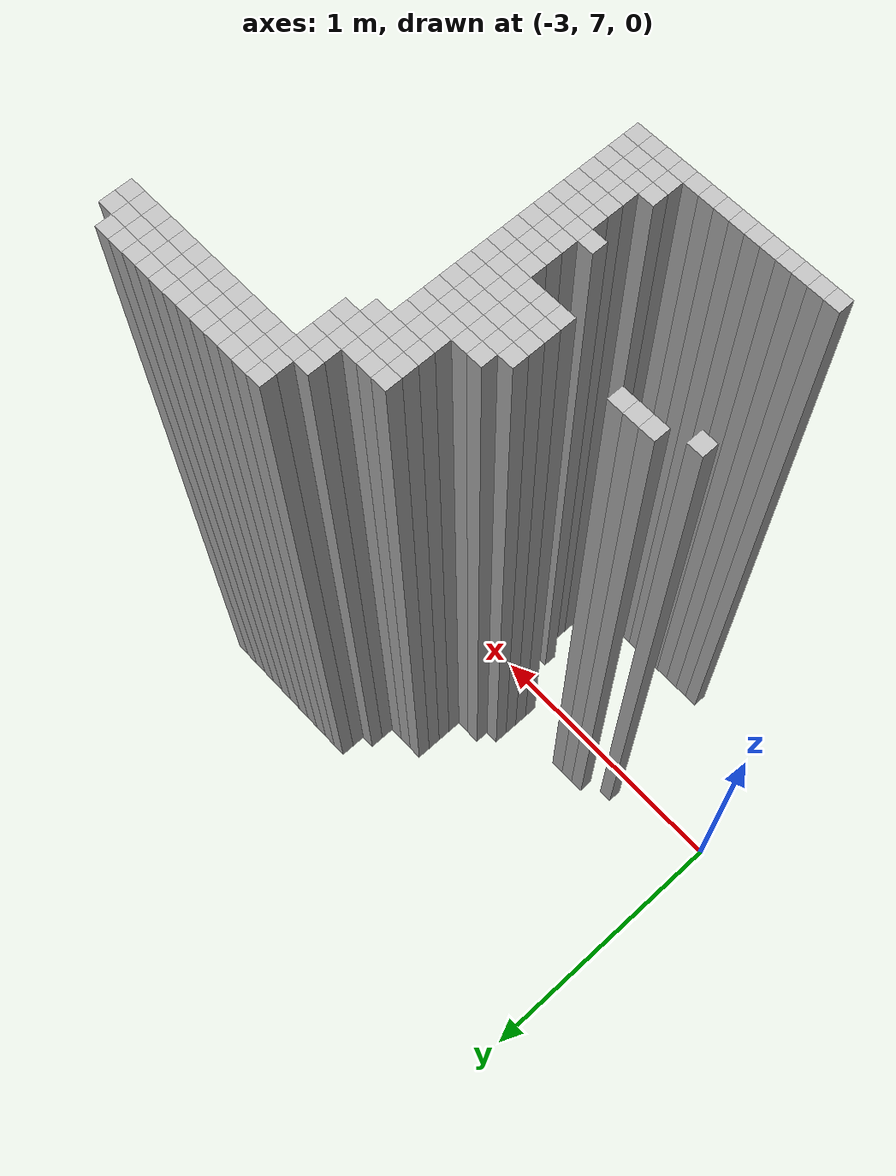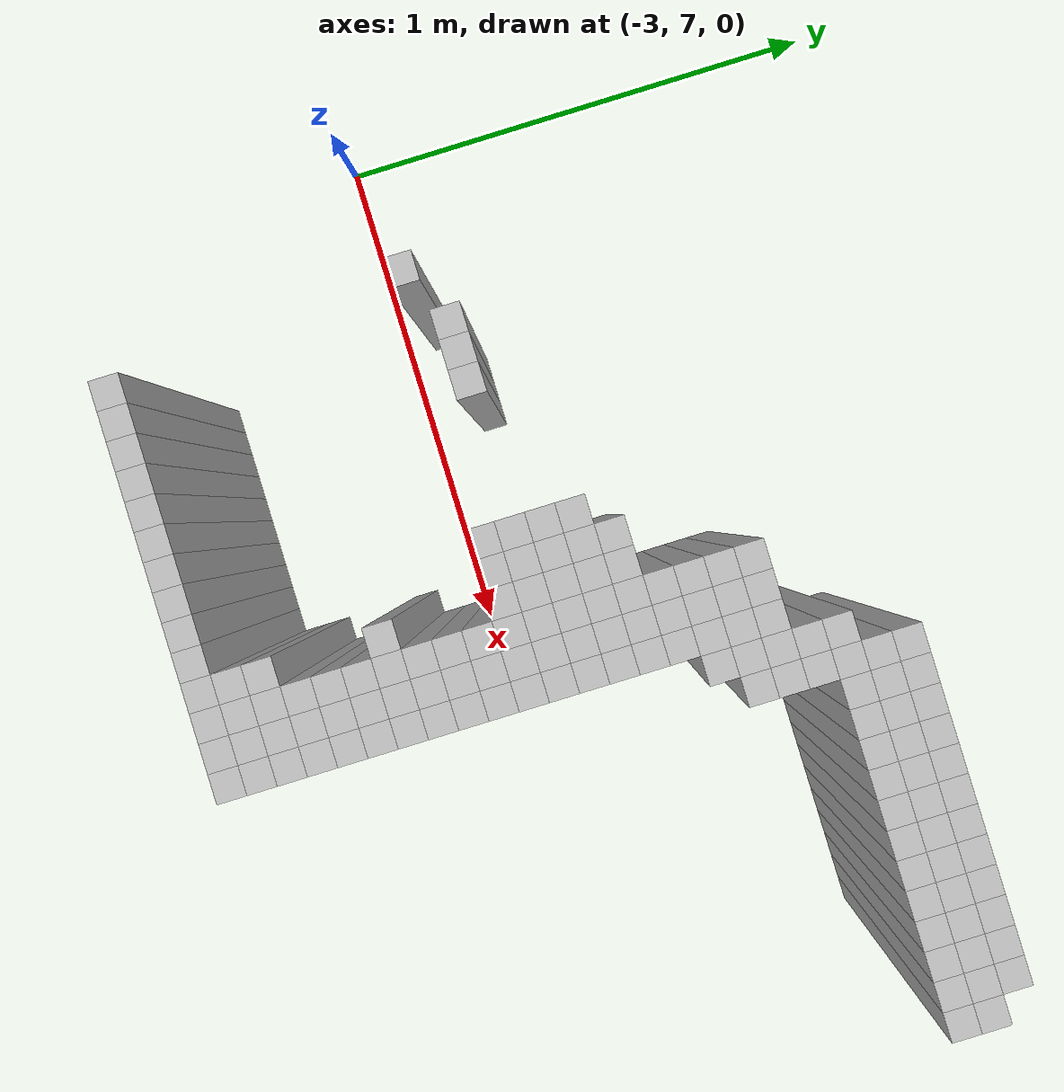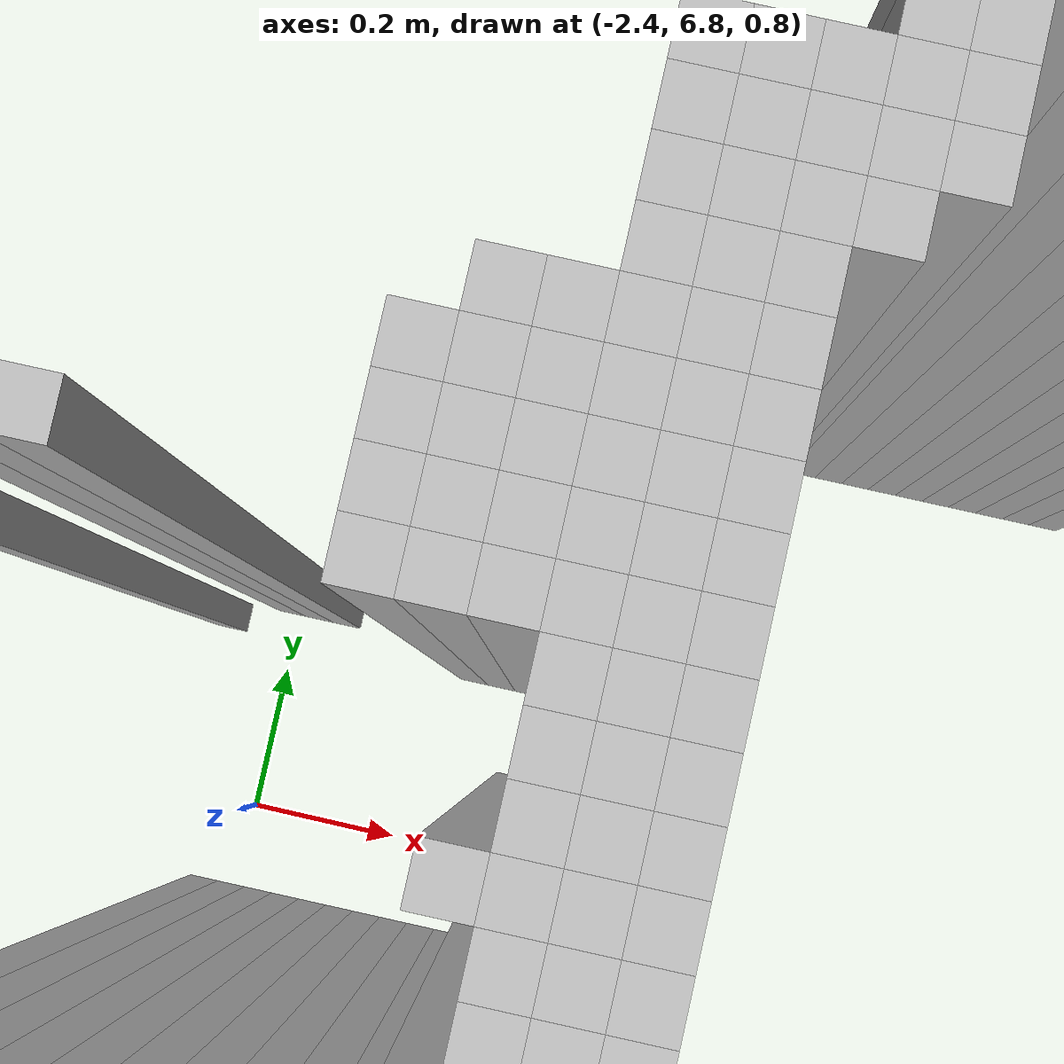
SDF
<sdf version="1.9">
 <world name="map_world">
  <model name="wall_187_0">
   <static>true</static>
   <pose>-1.811 7.680 1.250 0 0 0</pose>
   <link name="link">
    <collision name="collision"><geometry><box><size>0.050 0.050 2.500</size></box></geometry></collision>
    <visual name="visual"><geometry><box><size>0.050 0.050 2.500</size></box></geometry></visual>
   </link>
  </model>
  <model name="wall_188_0">
   <static>true</static>
   <pose>-1.761 7.680 1.250 0 0 0</pose>
   <link name="link">
    <collision name="collision"><geometry><box><size>0.050 0.050 2.500</size></box></geometry></collision>
    <visual name="visual"><geometry><box><size>0.050 0.050 2.500</size></box></geometry></visual>
   </link>
  </model>
  <model name="wall_189_0">
   <static>true</static>
   <pose>-1.711 7.680 1.250 0 0 0</pose>
   <link name="link">
    <collision name="collision"><geometry><box><size>0.050 0.050 2.500</size></box></geometry></collision>
    <visual name="visual"><geometry><box><size>0.050 0.050 2.500</size></box></geometry></visual>
   </link>
  </model>
  <model name="wall_190_0">
   <static>true</static>
   <pose>-1.661 7.680 1.250 0 0 0</pose>
   <link name="link">
    <collision name="collision"><geometry><box><size>0.050 0.050 2.500</size></box></geometry></collision>
    <visual name="visual"><geometry><box><size>0.050 0.050 2.500</size></box></geometry></visual>
   </link>
  </model>
  <model name="wall_191_0">
   <static>true</static>
   <pose>-1.611 7.680 1.250 0 0 0</pose>
   <link name="link">
    <collision name="collision"><geometry><box><size>0.050 0.050 2.500</size></box></geometry></collision>
    <visual name="visual"><geometry><box><size>0.050 0.050 2.500</size></box></geometry></visual>
   </link>
  </model>
  <model name="wall_192_0">
   <static>true</static>
   <pose>-1.561 7.680 1.250 0 0 0</pose>
   <link name="link">
    <collision name="collision"><geometry><box><size>0.050 0.050 2.500</size></box></geometry></collision>
    <visual name="visual"><geometry><box><size>0.050 0.050 2.500</size></box></geometry></visual>
   </link>
  </model>
  <model name="wall_193_0">
   <static>true</static>
   <pose>-1.511 7.680 1.250 0 0 0</pose>
   <link name="link">
    <collision name="collision"><geometry><box><size>0.050 0.050 2.500</size></box></geometry></collision>
    <visual name="visual"><geometry><box><size>0.050 0.050 2.500</size></box></geometry></visual>
   </link>
  </model>
  <model name="wall_194_0">
   <static>true</static>
   <pose>-1.461 7.680 1.250 0 0 0</pose>
   <link name="link">
    <collision name="collision"><geometry><box><size>0.050 0.050 2.500</size></box></geometry></collision>
    <visual name="visual"><geometry><box><size>0.050 0.050 2.500</size></box></geometry></visual>
   </link>
  </model>
  <model name="wall_195_0">
   <static>true</static>
   <pose>-1.411 7.680 1.250 0 0 0</pose>
   <link name="link">
    <collision name="collision"><geometry><box><size>0.050 0.050 2.500</size></box></geometry></collision>
    <visual name="visual"><geometry><box><size>0.050 0.050 2.500</size></box></geometry></visual>
   </link>
  </model>
  <model name="wall_196_0">
   <static>true</static>
   <pose>-1.361 7.680 1.250 0 0 0</pose>
   <link name="link">
    <collision name="collision"><geometry><box><size>0.050 0.050 2.500</size></box></geometry></collision>
    <visual name="visual"><geometry><box><size>0.050 0.050 2.500</size></box></geometry></visual>
   </link>
  </model>
  <model name="wall_197_0">
   <static>true</static>
   <pose>-1.311 7.680 1.250 0 0 0</pose>
   <link name="link">
    <collision name="collision"><geometry><box><size>0.050 0.050 2.500</size></box></geometry></collision>
    <visual name="visual"><geometry><box><size>0.050 0.050 2.500</size></box></geometry></visual>
   </link>
  </model>
  <model name="wall_198_0">
   <static>true</static>
   <pose>-1.261 7.680 1.250 0 0 0</pose>
   <link name="link">
    <collision name="collision"><geometry><box><size>0.050 0.050 2.500</size></box></geometry></collision>
    <visual name="visual"><geometry><box><size>0.050 0.050 2.500</size></box></geometry></visual>
   </link>
  </model>
  <model name="wall_187_1">
   <static>true</static>
   <pose>-1.811 7.630 1.250 0 0 0</pose>
   <link name="link">
    <collision name="collision"><geometry><box><size>0.050 0.050 2.500</size></box></geometry></collision>
    <visual name="visual"><geometry><box><size>0.050 0.050 2.500</size></box></geometry></visual>
   </link>
  </model>
  <model name="wall_188_1">
   <static>true</static>
   <pose>-1.761 7.630 1.250 0 0 0</pose>
   <link name="link">
    <collision name="collision"><geometry><box><size>0.050 0.050 2.500</size></box></geometry></collision>
    <visual name="visual"><geometry><box><size>0.050 0.050 2.500</size></box></geometry></visual>
   </link>
  </model>
  <model name="wall_189_1">
   <static>true</static>
   <pose>-1.711 7.630 1.250 0 0 0</pose>
   <link name="link">
    <collision name="collision"><geometry><box><size>0.050 0.050 2.500</size></box></geometry></collision>
    <visual name="visual"><geometry><box><size>0.050 0.050 2.500</size></box></geometry></visual>
   </link>
  </model>
  <model name="wall_190_1">
   <static>true</static>
   <pose>-1.661 7.630 1.250 0 0 0</pose>
   <link name="link">
    <collision name="collision"><geometry><box><size>0.050 0.050 2.500</size></box></geometry></collision>
    <visual name="visual"><geometry><box><size>0.050 0.050 2.500</size></box></geometry></visual>
   </link>
  </model>
  <model name="wall_191_1">
   <static>true</static>
   <pose>-1.611 7.630 1.250 0 0 0</pose>
   <link name="link">
    <collision name="collision"><geometry><box><size>0.050 0.050 2.500</size></box></geometry></collision>
    <visual name="visual"><geometry><box><size>0.050 0.050 2.500</size></box></geometry></visual>
   </link>
  </model>
  <model name="wall_192_1">
   <static>true</static>
   <pose>-1.561 7.630 1.250 0 0 0</pose>
   <link name="link">
    <collision name="collision"><geometry><box><size>0.050 0.050 2.500</size></box></geometry></collision>
    <visual name="visual"><geometry><box><size>0.050 0.050 2.500</size></box></geometry></visual>
   </link>
  </model>
  <model name="wall_193_1">
   <static>true</static>
   <pose>-1.511 7.630 1.250 0 0 0</pose>
   <link name="link">
    <collision name="collision"><geometry><box><size>0.050 0.050 2.500</size></box></geometry></collision>
    <visual name="visual"><geometry><box><size>0.050 0.050 2.500</size></box></geometry></visual>
   </link>
  </model>
  <model name="wall_194_1">
   <static>true</static>
   <pose>-1.461 7.630 1.250 0 0 0</pose>
   <link name="link">
    <collision name="collision"><geometry><box><size>0.050 0.050 2.500</size></box></geometry></collision>
    <visual name="visual"><geometry><box><size>0.050 0.050 2.500</size></box></geometry></visual>
   </link>
  </model>
  <model name="wall_195_1">
   <static>true</static>
   <pose>-1.411 7.630 1.250 0 0 0</pose>
   <link name="link">
    <collision name="collision"><geometry><box><size>0.050 0.050 2.500</size></box></geometry></collision>
    <visual name="visual"><geometry><box><size>0.050 0.050 2.500</size></box></geometry></visual>
   </link>
  </model>
  <model name="wall_196_1">
   <static>true</static>
   <pose>-1.361 7.630 1.250 0 0 0</pose>
   <link name="link">
    <collision name="collision"><geometry><box><size>0.050 0.050 2.500</size></box></geometry></collision>
    <visual name="visual"><geometry><box><size>0.050 0.050 2.500</size></box></geometry></visual>
   </link>
  </model>
  <model name="wall_197_1">
   <static>true</static>
   <pose>-1.311 7.630 1.250 0 0 0</pose>
   <link name="link">
    <collision name="collision"><geometry><box><size>0.050 0.050 2.500</size></box></geometry></collision>
    <visual name="visual"><geometry><box><size>0.050 0.050 2.500</size></box></geometry></visual>
   </link>
  </model>
  <model name="wall_198_1">
   <static>true</static>
   <pose>-1.261 7.630 1.250 0 0 0</pose>
   <link name="link">
    <collision name="collision"><geometry><box><size>0.050 0.050 2.500</size></box></geometry></collision>
    <visual name="visual"><geometry><box><size>0.050 0.050 2.500</size></box></geometry></visual>
   </link>
  </model>
  <model name="wall_199_1">
   <static>true</static>
   <pose>-1.211 7.630 1.250 0 0 0</pose>
   <link name="link">
    <collision name="collision"><geometry><box><size>0.050 0.050 2.500</size></box></geometry></collision>
    <visual name="visual"><geometry><box><size>0.050 0.050 2.500</size></box></geometry></visual>
   </link>
  </model>
  <model name="wall_186_2">
   <static>true</static>
   <pose>-1.861 7.580 1.250 0 0 0</pose>
   <link name="link">
    <collision name="collision"><geometry><box><size>0.050 0.050 2.500</size></box></geometry></collision>
    <visual name="visual"><geometry><box><size>0.050 0.050 2.500</size></box></geometry></visual>
   </link>
  </model>
  <model name="wall_187_2">
   <static>true</static>
   <pose>-1.811 7.580 1.250 0 0 0</pose>
   <link name="link">
    <collision name="collision"><geometry><box><size>0.050 0.050 2.500</size></box></geometry></collision>
    <visual name="visual"><geometry><box><size>0.050 0.050 2.500</size></box></geometry></visual>
   </link>
  </model>
  <model name="wall_188_2">
   <static>true</static>
   <pose>-1.761 7.580 1.250 0 0 0</pose>
   <link name="link">
    <collision name="collision"><geometry><box><size>0.050 0.050 2.500</size></box></geometry></collision>
    <visual name="visual"><geometry><box><size>0.050 0.050 2.500</size></box></geometry></visual>
   </link>
  </model>
  <model name="wall_189_2">
   <static>true</static>
   <pose>-1.711 7.580 1.250 0 0 0</pose>
   <link name="link">
    <collision name="collision"><geometry><box><size>0.050 0.050 2.500</size></box></geometry></collision>
    <visual name="visual"><geometry><box><size>0.050 0.050 2.500</size></box></geometry></visual>
   </link>
  </model>
  <model name="wall_190_2">
   <static>true</static>
   <pose>-1.661 7.580 1.250 0 0 0</pose>
   <link name="link">
    <collision name="collision"><geometry><box><size>0.050 0.050 2.500</size></box></geometry></collision>
    <visual name="visual"><geometry><box><size>0.050 0.050 2.500</size></box></geometry></visual>
   </link>
  </model>
  <model name="wall_191_2">
   <static>true</static>
   <pose>-1.611 7.580 1.250 0 0 0</pose>
   <link name="link">
    <collision name="collision"><geometry><box><size>0.050 0.050 2.500</size></box></geometry></collision>
    <visual name="visual"><geometry><box><size>0.050 0.050 2.500</size></box></geometry></visual>
   </link>
  </model>
  <model name="wall_192_2">
   <static>true</static>
   <pose>-1.561 7.580 1.250 0 0 0</pose>
   <link name="link">
    <collision name="collision"><geometry><box><size>0.050 0.050 2.500</size></box></geometry></collision>
    <visual name="visual"><geometry><box><size>0.050 0.050 2.500</size></box></geometry></visual>
   </link>
  </model>
  <model name="wall_193_2">
   <static>true</static>
   <pose>-1.511 7.580 1.250 0 0 0</pose>
   <link name="link">
    <collision name="collision"><geometry><box><size>0.050 0.050 2.500</size></box></geometry></collision>
    <visual name="visual"><geometry><box><size>0.050 0.050 2.500</size></box></geometry></visual>
   </link>
  </model>
  <model name="wall_194_2">
   <static>true</static>
   <pose>-1.461 7.580 1.250 0 0 0</pose>
   <link name="link">
    <collision name="collision"><geometry><box><size>0.050 0.050 2.500</size></box></geometry></collision>
    <visual name="visual"><geometry><box><size>0.050 0.050 2.500</size></box></geometry></visual>
   </link>
  </model>
  <model name="wall_195_2">
   <static>true</static>
   <pose>-1.411 7.580 1.250 0 0 0</pose>
   <link name="link">
    <collision name="collision"><geometry><box><size>0.050 0.050 2.500</size></box></geometry></collision>
    <visual name="visual"><geometry><box><size>0.050 0.050 2.500</size></box></geometry></visual>
   </link>
  </model>
  <model name="wall_196_2">
   <static>true</static>
   <pose>-1.361 7.580 1.250 0 0 0</pose>
   <link name="link">
    <collision name="collision"><geometry><box><size>0.050 0.050 2.500</size></box></geometry></collision>
    <visual name="visual"><geometry><box><size>0.050 0.050 2.500</size></box></geometry></visual>
   </link>
  </model>
  <model name="wall_197_2">
   <static>true</static>
   <pose>-1.311 7.580 1.250 0 0 0</pose>
   <link name="link">
    <collision name="collision"><geometry><box><size>0.050 0.050 2.500</size></box></geometry></collision>
    <visual name="visual"><geometry><box><size>0.050 0.050 2.500</size></box></geometry></visual>
   </link>
  </model>
  <model name="wall_198_2">
   <static>true</static>
   <pose>-1.261 7.580 1.250 0 0 0</pose>
   <link name="link">
    <collision name="collision"><geometry><box><size>0.050 0.050 2.500</size></box></geometry></collision>
    <visual name="visual"><geometry><box><size>0.050 0.050 2.500</size></box></geometry></visual>
   </link>
  </model>
  <model name="wall_199_2">
   <static>true</static>
   <pose>-1.211 7.580 1.250 0 0 0</pose>
   <link name="link">
    <collision name="collision"><geometry><box><size>0.050 0.050 2.500</size></box></geometry></collision>
    <visual name="visual"><geometry><box><size>0.050 0.050 2.500</size></box></geometry></visual>
   </link>
  </model>
  <model name="wall_186_3">
   <static>true</static>
   <pose>-1.861 7.530 1.250 0 0 0</pose>
   <link name="link">
    <collision name="collision"><geometry><box><size>0.050 0.050 2.500</size></box></geometry></collision>
    <visual name="visual"><geometry><box><size>0.050 0.050 2.500</size></box></geometry></visual>
   </link>
  </model>
  <model name="wall_187_3">
   <static>true</static>
   <pose>-1.811 7.530 1.250 0 0 0</pose>
   <link name="link">
    <collision name="collision"><geometry><box><size>0.050 0.050 2.500</size></box></geometry></collision>
    <visual name="visual"><geometry><box><size>0.050 0.050 2.500</size></box></geometry></visual>
   </link>
  </model>
  <model name="wall_183_4">
   <static>true</static>
   <pose>-2.011 7.480 1.250 0 0 0</pose>
   <link name="link">
    <collision name="collision"><geometry><box><size>0.050 0.050 2.500</size></box></geometry></collision>
    <visual name="visual"><geometry><box><size>0.050 0.050 2.500</size></box></geometry></visual>
   </link>
  </model>
  <model name="wall_184_4">
   <static>true</static>
   <pose>-1.961 7.480 1.250 0 0 0</pose>
   <link name="link">
    <collision name="collision"><geometry><box><size>0.050 0.050 2.500</size></box></geometry></collision>
    <visual name="visual"><geometry><box><size>0.050 0.050 2.500</size></box></geometry></visual>
   </link>
  </model>
  <model name="wall_185_4">
   <static>true</static>
   <pose>-1.911 7.480 1.250 0 0 0</pose>
   <link name="link">
    <collision name="collision"><geometry><box><size>0.050 0.050 2.500</size></box></geometry></collision>
    <visual name="visual"><geometry><box><size>0.050 0.050 2.500</size></box></geometry></visual>
   </link>
  </model>
  <model name="wall_186_4">
   <static>true</static>
   <pose>-1.861 7.480 1.250 0 0 0</pose>
   <link name="link">
    <collision name="collision"><geometry><box><size>0.050 0.050 2.500</size></box></geometry></collision>
    <visual name="visual"><geometry><box><size>0.050 0.050 2.500</size></box></geometry></visual>
   </link>
  </model>
  <model name="wall_187_4">
   <static>true</static>
   <pose>-1.811 7.480 1.250 0 0 0</pose>
   <link name="link">
    <collision name="collision"><geometry><box><size>0.050 0.050 2.500</size></box></geometry></collision>
    <visual name="visual"><geometry><box><size>0.050 0.050 2.500</size></box></geometry></visual>
   </link>
  </model>
  <model name="wall_183_5">
   <static>true</static>
   <pose>-2.011 7.430 1.250 0 0 0</pose>
   <link name="link">
    <collision name="collision"><geometry><box><size>0.050 0.050 2.500</size></box></geometry></collision>
    <visual name="visual"><geometry><box><size>0.050 0.050 2.500</size></box></geometry></visual>
   </link>
  </model>
  <model name="wall_184_5">
   <static>true</static>
   <pose>-1.961 7.430 1.250 0 0 0</pose>
   <link name="link">
    <collision name="collision"><geometry><box><size>0.050 0.050 2.500</size></box></geometry></collision>
    <visual name="visual"><geometry><box><size>0.050 0.050 2.500</size></box></geometry></visual>
   </link>
  </model>
  <model name="wall_185_5">
   <static>true</static>
   <pose>-1.911 7.430 1.250 0 0 0</pose>
   <link name="link">
    <collision name="collision"><geometry><box><size>0.050 0.050 2.500</size></box></geometry></collision>
    <visual name="visual"><geometry><box><size>0.050 0.050 2.500</size></box></geometry></visual>
   </link>
  </model>
  <model name="wall_186_5">
   <static>true</static>
   <pose>-1.861 7.430 1.250 0 0 0</pose>
   <link name="link">
    <collision name="collision"><geometry><box><size>0.050 0.050 2.500</size></box></geometry></collision>
    <visual name="visual"><geometry><box><size>0.050 0.050 2.500</size></box></geometry></visual>
   </link>
  </model>
  <model name="wall_187_5">
   <static>true</static>
   <pose>-1.811 7.430 1.250 0 0 0</pose>
   <link name="link">
    <collision name="collision"><geometry><box><size>0.050 0.050 2.500</size></box></geometry></collision>
    <visual name="visual"><geometry><box><size>0.050 0.050 2.500</size></box></geometry></visual>
   </link>
  </model>
  <model name="wall_183_6">
   <static>true</static>
   <pose>-2.011 7.380 1.250 0 0 0</pose>
   <link name="link">
    <collision name="collision"><geometry><box><size>0.050 0.050 2.500</size></box></geometry></collision>
    <visual name="visual"><geometry><box><size>0.050 0.050 2.500</size></box></geometry></visual>
   </link>
  </model>
  <model name="wall_184_6">
   <static>true</static>
   <pose>-1.961 7.380 1.250 0 0 0</pose>
   <link name="link">
    <collision name="collision"><geometry><box><size>0.050 0.050 2.500</size></box></geometry></collision>
    <visual name="visual"><geometry><box><size>0.050 0.050 2.500</size></box></geometry></visual>
   </link>
  </model>
  <model name="wall_185_6">
   <static>true</static>
   <pose>-1.911 7.380 1.250 0 0 0</pose>
   <link name="link">
    <collision name="collision"><geometry><box><size>0.050 0.050 2.500</size></box></geometry></collision>
    <visual name="visual"><geometry><box><size>0.050 0.050 2.500</size></box></geometry></visual>
   </link>
  </model>
  <model name="wall_186_6">
   <static>true</static>
   <pose>-1.861 7.380 1.250 0 0 0</pose>
   <link name="link">
    <collision name="collision"><geometry><box><size>0.050 0.050 2.500</size></box></geometry></collision>
    <visual name="visual"><geometry><box><size>0.050 0.050 2.500</size></box></geometry></visual>
   </link>
  </model>
  <model name="wall_183_7">
   <static>true</static>
   <pose>-2.011 7.330 1.250 0 0 0</pose>
   <link name="link">
    <collision name="collision"><geometry><box><size>0.050 0.050 2.500</size></box></geometry></collision>
    <visual name="visual"><geometry><box><size>0.050 0.050 2.500</size></box></geometry></visual>
   </link>
  </model>
  <model name="wall_184_7">
   <static>true</static>
   <pose>-1.961 7.330 1.250 0 0 0</pose>
   <link name="link">
    <collision name="collision"><geometry><box><size>0.050 0.050 2.500</size></box></geometry></collision>
    <visual name="visual"><geometry><box><size>0.050 0.050 2.500</size></box></geometry></visual>
   </link>
  </model>
  <model name="wall_185_7">
   <static>true</static>
   <pose>-1.911 7.330 1.250 0 0 0</pose>
   <link name="link">
    <collision name="collision"><geometry><box><size>0.050 0.050 2.500</size></box></geometry></collision>
    <visual name="visual"><geometry><box><size>0.050 0.050 2.500</size></box></geometry></visual>
   </link>
  </model>
  <model name="wall_181_8">
   <static>true</static>
   <pose>-2.111 7.280 1.250 0 0 0</pose>
   <link name="link">
    <collision name="collision"><geometry><box><size>0.050 0.050 2.500</size></box></geometry></collision>
    <visual name="visual"><geometry><box><size>0.050 0.050 2.500</size></box></geometry></visual>
   </link>
  </model>
  <model name="wall_182_8">
   <static>true</static>
   <pose>-2.061 7.280 1.250 0 0 0</pose>
   <link name="link">
    <collision name="collision"><geometry><box><size>0.050 0.050 2.500</size></box></geometry></collision>
    <visual name="visual"><geometry><box><size>0.050 0.050 2.500</size></box></geometry></visual>
   </link>
  </model>
  <model name="wall_183_8">
   <static>true</static>
   <pose>-2.011 7.280 1.250 0 0 0</pose>
   <link name="link">
    <collision name="collision"><geometry><box><size>0.050 0.050 2.500</size></box></geometry></collision>
    <visual name="visual"><geometry><box><size>0.050 0.050 2.500</size></box></geometry></visual>
   </link>
  </model>
  <model name="wall_184_8">
   <static>true</static>
   <pose>-1.961 7.280 1.250 0 0 0</pose>
   <link name="link">
    <collision name="collision"><geometry><box><size>0.050 0.050 2.500</size></box></geometry></collision>
    <visual name="visual"><geometry><box><size>0.050 0.050 2.500</size></box></geometry></visual>
   </link>
  </model>
  <model name="wall_185_8">
   <static>true</static>
   <pose>-1.911 7.280 1.250 0 0 0</pose>
   <link name="link">
    <collision name="collision"><geometry><box><size>0.050 0.050 2.500</size></box></geometry></collision>
    <visual name="visual"><geometry><box><size>0.050 0.050 2.500</size></box></geometry></visual>
   </link>
  </model>
  <model name="wall_180_9">
   <static>true</static>
   <pose>-2.161 7.230 1.250 0 0 0</pose>
   <link name="link">
    <collision name="collision"><geometry><box><size>0.050 0.050 2.500</size></box></geometry></collision>
    <visual name="visual"><geometry><box><size>0.050 0.050 2.500</size></box></geometry></visual>
   </link>
  </model>
  <model name="wall_181_9">
   <static>true</static>
   <pose>-2.111 7.230 1.250 0 0 0</pose>
   <link name="link">
    <collision name="collision"><geometry><box><size>0.050 0.050 2.500</size></box></geometry></collision>
    <visual name="visual"><geometry><box><size>0.050 0.050 2.500</size></box></geometry></visual>
   </link>
  </model>
  <model name="wall_182_9">
   <static>true</static>
   <pose>-2.061 7.230 1.250 0 0 0</pose>
   <link name="link">
    <collision name="collision"><geometry><box><size>0.050 0.050 2.500</size></box></geometry></collision>
    <visual name="visual"><geometry><box><size>0.050 0.050 2.500</size></box></geometry></visual>
   </link>
  </model>
  <model name="wall_183_9">
   <static>true</static>
   <pose>-2.011 7.230 1.250 0 0 0</pose>
   <link name="link">
    <collision name="collision"><geometry><box><size>0.050 0.050 2.500</size></box></geometry></collision>
    <visual name="visual"><geometry><box><size>0.050 0.050 2.500</size></box></geometry></visual>
   </link>
  </model>
  <model name="wall_184_9">
   <static>true</static>
   <pose>-1.961 7.230 1.250 0 0 0</pose>
   <link name="link">
    <collision name="collision"><geometry><box><size>0.050 0.050 2.500</size></box></geometry></collision>
    <visual name="visual"><geometry><box><size>0.050 0.050 2.500</size></box></geometry></visual>
   </link>
  </model>
  <model name="wall_185_9">
   <static>true</static>
   <pose>-1.911 7.230 1.250 0 0 0</pose>
   <link name="link">
    <collision name="collision"><geometry><box><size>0.050 0.050 2.500</size></box></geometry></collision>
    <visual name="visual"><geometry><box><size>0.050 0.050 2.500</size></box></geometry></visual>
   </link>
  </model>
  <model name="wall_180_10">
   <static>true</static>
   <pose>-2.161 7.180 1.250 0 0 0</pose>
   <link name="link">
    <collision name="collision"><geometry><box><size>0.050 0.050 2.500</size></box></geometry></collision>
    <visual name="visual"><geometry><box><size>0.050 0.050 2.500</size></box></geometry></visual>
   </link>
  </model>
  <model name="wall_181_10">
   <static>true</static>
   <pose>-2.111 7.180 1.250 0 0 0</pose>
   <link name="link">
    <collision name="collision"><geometry><box><size>0.050 0.050 2.500</size></box></geometry></collision>
    <visual name="visual"><geometry><box><size>0.050 0.050 2.500</size></box></geometry></visual>
   </link>
  </model>
  <model name="wall_182_10">
   <static>true</static>
   <pose>-2.061 7.180 1.250 0 0 0</pose>
   <link name="link">
    <collision name="collision"><geometry><box><size>0.050 0.050 2.500</size></box></geometry></collision>
    <visual name="visual"><geometry><box><size>0.050 0.050 2.500</size></box></geometry></visual>
   </link>
  </model>
  <model name="wall_183_10">
   <static>true</static>
   <pose>-2.011 7.180 1.250 0 0 0</pose>
   <link name="link">
    <collision name="collision"><geometry><box><size>0.050 0.050 2.500</size></box></geometry></collision>
    <visual name="visual"><geometry><box><size>0.050 0.050 2.500</size></box></geometry></visual>
   </link>
  </model>
  <model name="wall_184_10">
   <static>true</static>
   <pose>-1.961 7.180 1.250 0 0 0</pose>
   <link name="link">
    <collision name="collision"><geometry><box><size>0.050 0.050 2.500</size></box></geometry></collision>
    <visual name="visual"><geometry><box><size>0.050 0.050 2.500</size></box></geometry></visual>
   </link>
  </model>
  <model name="wall_185_10">
   <static>true</static>
   <pose>-1.911 7.180 1.250 0 0 0</pose>
   <link name="link">
    <collision name="collision"><geometry><box><size>0.050 0.050 2.500</size></box></geometry></collision>
    <visual name="visual"><geometry><box><size>0.050 0.050 2.500</size></box></geometry></visual>
   </link>
  </model>
  <model name="wall_173_11">
   <static>true</static>
   <pose>-2.511 7.130 1.250 0 0 0</pose>
   <link name="link">
    <collision name="collision"><geometry><box><size>0.050 0.050 2.500</size></box></geometry></collision>
    <visual name="visual"><geometry><box><size>0.050 0.050 2.500</size></box></geometry></visual>
   </link>
  </model>
  <model name="wall_174_11">
   <static>true</static>
   <pose>-2.461 7.130 1.250 0 0 0</pose>
   <link name="link">
    <collision name="collision"><geometry><box><size>0.050 0.050 2.500</size></box></geometry></collision>
    <visual name="visual"><geometry><box><size>0.050 0.050 2.500</size></box></geometry></visual>
   </link>
  </model>
  <model name="wall_175_11">
   <static>true</static>
   <pose>-2.411 7.130 1.250 0 0 0</pose>
   <link name="link">
    <collision name="collision"><geometry><box><size>0.050 0.050 2.500</size></box></geometry></collision>
    <visual name="visual"><geometry><box><size>0.050 0.050 2.500</size></box></geometry></visual>
   </link>
  </model>
  <model name="wall_180_11">
   <static>true</static>
   <pose>-2.161 7.130 1.250 0 0 0</pose>
   <link name="link">
    <collision name="collision"><geometry><box><size>0.050 0.050 2.500</size></box></geometry></collision>
    <visual name="visual"><geometry><box><size>0.050 0.050 2.500</size></box></geometry></visual>
   </link>
  </model>
  <model name="wall_181_11">
   <static>true</static>
   <pose>-2.111 7.130 1.250 0 0 0</pose>
   <link name="link">
    <collision name="collision"><geometry><box><size>0.050 0.050 2.500</size></box></geometry></collision>
    <visual name="visual"><geometry><box><size>0.050 0.050 2.500</size></box></geometry></visual>
   </link>
  </model>
  <model name="wall_182_11">
   <static>true</static>
   <pose>-2.061 7.130 1.250 0 0 0</pose>
   <link name="link">
    <collision name="collision"><geometry><box><size>0.050 0.050 2.500</size></box></geometry></collision>
    <visual name="visual"><geometry><box><size>0.050 0.050 2.500</size></box></geometry></visual>
   </link>
  </model>
  <model name="wall_183_11">
   <static>true</static>
   <pose>-2.011 7.130 1.250 0 0 0</pose>
   <link name="link">
    <collision name="collision"><geometry><box><size>0.050 0.050 2.500</size></box></geometry></collision>
    <visual name="visual"><geometry><box><size>0.050 0.050 2.500</size></box></geometry></visual>
   </link>
  </model>
  <model name="wall_184_11">
   <static>true</static>
   <pose>-1.961 7.130 1.250 0 0 0</pose>
   <link name="link">
    <collision name="collision"><geometry><box><size>0.050 0.050 2.500</size></box></geometry></collision>
    <visual name="visual"><geometry><box><size>0.050 0.050 2.500</size></box></geometry></visual>
   </link>
  </model>
  <model name="wall_185_11">
   <static>true</static>
   <pose>-1.911 7.130 1.250 0 0 0</pose>
   <link name="link">
    <collision name="collision"><geometry><box><size>0.050 0.050 2.500</size></box></geometry></collision>
    <visual name="visual"><geometry><box><size>0.050 0.050 2.500</size></box></geometry></visual>
   </link>
  </model>
  <model name="wall_171_12">
   <static>true</static>
   <pose>-2.611 7.080 1.250 0 0 0</pose>
   <link name="link">
    <collision name="collision"><geometry><box><size>0.050 0.050 2.500</size></box></geometry></collision>
    <visual name="visual"><geometry><box><size>0.050 0.050 2.500</size></box></geometry></visual>
   </link>
  </model>
  <model name="wall_180_12">
   <static>true</static>
   <pose>-2.161 7.080 1.250 0 0 0</pose>
   <link name="link">
    <collision name="collision"><geometry><box><size>0.050 0.050 2.500</size></box></geometry></collision>
    <visual name="visual"><geometry><box><size>0.050 0.050 2.500</size></box></geometry></visual>
   </link>
  </model>
  <model name="wall_181_12">
   <static>true</static>
   <pose>-2.111 7.080 1.250 0 0 0</pose>
   <link name="link">
    <collision name="collision"><geometry><box><size>0.050 0.050 2.500</size></box></geometry></collision>
    <visual name="visual"><geometry><box><size>0.050 0.050 2.500</size></box></geometry></visual>
   </link>
  </model>
  <model name="wall_182_12">
   <static>true</static>
   <pose>-2.061 7.080 1.250 0 0 0</pose>
   <link name="link">
    <collision name="collision"><geometry><box><size>0.050 0.050 2.500</size></box></geometry></collision>
    <visual name="visual"><geometry><box><size>0.050 0.050 2.500</size></box></geometry></visual>
   </link>
  </model>
  <model name="wall_183_12">
   <static>true</static>
   <pose>-2.011 7.080 1.250 0 0 0</pose>
   <link name="link">
    <collision name="collision"><geometry><box><size>0.050 0.050 2.500</size></box></geometry></collision>
    <visual name="visual"><geometry><box><size>0.050 0.050 2.500</size></box></geometry></visual>
   </link>
  </model>
  <model name="wall_184_12">
   <static>true</static>
   <pose>-1.961 7.080 1.250 0 0 0</pose>
   <link name="link">
    <collision name="collision"><geometry><box><size>0.050 0.050 2.500</size></box></geometry></collision>
    <visual name="visual"><geometry><box><size>0.050 0.050 2.500</size></box></geometry></visual>
   </link>
  </model>
  <model name="wall_185_12">
   <static>true</static>
   <pose>-1.911 7.080 1.250 0 0 0</pose>
   <link name="link">
    <collision name="collision"><geometry><box><size>0.050 0.050 2.500</size></box></geometry></collision>
    <visual name="visual"><geometry><box><size>0.050 0.050 2.500</size></box></geometry></visual>
   </link>
  </model>
  <model name="wall_183_13">
   <static>true</static>
   <pose>-2.011 7.030 1.250 0 0 0</pose>
   <link name="link">
    <collision name="collision"><geometry><box><size>0.050 0.050 2.500</size></box></geometry></collision>
    <visual name="visual"><geometry><box><size>0.050 0.050 2.500</size></box></geometry></visual>
   </link>
  </model>
  <model name="wall_184_13">
   <static>true</static>
   <pose>-1.961 7.030 1.250 0 0 0</pose>
   <link name="link">
    <collision name="collision"><geometry><box><size>0.050 0.050 2.500</size></box></geometry></collision>
    <visual name="visual"><geometry><box><size>0.050 0.050 2.500</size></box></geometry></visual>
   </link>
  </model>
  <model name="wall_185_13">
   <static>true</static>
   <pose>-1.911 7.030 1.250 0 0 0</pose>
   <link name="link">
    <collision name="collision"><geometry><box><size>0.050 0.050 2.500</size></box></geometry></collision>
    <visual name="visual"><geometry><box><size>0.050 0.050 2.500</size></box></geometry></visual>
   </link>
  </model>
  <model name="wall_183_14">
   <static>true</static>
   <pose>-2.011 6.980 1.250 0 0 0</pose>
   <link name="link">
    <collision name="collision"><geometry><box><size>0.050 0.050 2.500</size></box></geometry></collision>
    <visual name="visual"><geometry><box><size>0.050 0.050 2.500</size></box></geometry></visual>
   </link>
  </model>
  <model name="wall_184_14">
   <static>true</static>
   <pose>-1.961 6.980 1.250 0 0 0</pose>
   <link name="link">
    <collision name="collision"><geometry><box><size>0.050 0.050 2.500</size></box></geometry></collision>
    <visual name="visual"><geometry><box><size>0.050 0.050 2.500</size></box></geometry></visual>
   </link>
  </model>
  <model name="wall_185_14">
   <static>true</static>
   <pose>-1.911 6.980 1.250 0 0 0</pose>
   <link name="link">
    <collision name="collision"><geometry><box><size>0.050 0.050 2.500</size></box></geometry></collision>
    <visual name="visual"><geometry><box><size>0.050 0.050 2.500</size></box></geometry></visual>
   </link>
  </model>
  <model name="wall_183_15">
   <static>true</static>
   <pose>-2.011 6.930 1.250 0 0 0</pose>
   <link name="link">
    <collision name="collision"><geometry><box><size>0.050 0.050 2.500</size></box></geometry></collision>
    <visual name="visual"><geometry><box><size>0.050 0.050 2.500</size></box></geometry></visual>
   </link>
  </model>
  <model name="wall_184_15">
   <static>true</static>
   <pose>-1.961 6.930 1.250 0 0 0</pose>
   <link name="link">
    <collision name="collision"><geometry><box><size>0.050 0.050 2.500</size></box></geometry></collision>
    <visual name="visual"><geometry><box><size>0.050 0.050 2.500</size></box></geometry></visual>
   </link>
  </model>
  <model name="wall_185_15">
   <static>true</static>
   <pose>-1.911 6.930 1.250 0 0 0</pose>
   <link name="link">
    <collision name="collision"><geometry><box><size>0.050 0.050 2.500</size></box></geometry></collision>
    <visual name="visual"><geometry><box><size>0.050 0.050 2.500</size></box></geometry></visual>
   </link>
  </model>
  <model name="wall_182_16">
   <static>true</static>
   <pose>-2.061 6.880 1.250 0 0 0</pose>
   <link name="link">
    <collision name="collision"><geometry><box><size>0.050 0.050 2.500</size></box></geometry></collision>
    <visual name="visual"><geometry><box><size>0.050 0.050 2.500</size></box></geometry></visual>
   </link>
  </model>
  <model name="wall_183_16">
   <static>true</static>
   <pose>-2.011 6.880 1.250 0 0 0</pose>
   <link name="link">
    <collision name="collision"><geometry><box><size>0.050 0.050 2.500</size></box></geometry></collision>
    <visual name="visual"><geometry><box><size>0.050 0.050 2.500</size></box></geometry></visual>
   </link>
  </model>
  <model name="wall_184_16">
   <static>true</static>
   <pose>-1.961 6.880 1.250 0 0 0</pose>
   <link name="link">
    <collision name="collision"><geometry><box><size>0.050 0.050 2.500</size></box></geometry></collision>
    <visual name="visual"><geometry><box><size>0.050 0.050 2.500</size></box></geometry></visual>
   </link>
  </model>
  <model name="wall_185_16">
   <static>true</static>
   <pose>-1.911 6.880 1.250 0 0 0</pose>
   <link name="link">
    <collision name="collision"><geometry><box><size>0.050 0.050 2.500</size></box></geometry></collision>
    <visual name="visual"><geometry><box><size>0.050 0.050 2.500</size></box></geometry></visual>
   </link>
  </model>
  <model name="wall_183_17">
   <static>true</static>
   <pose>-2.011 6.830 1.250 0 0 0</pose>
   <link name="link">
    <collision name="collision"><geometry><box><size>0.050 0.050 2.500</size></box></geometry></collision>
    <visual name="visual"><geometry><box><size>0.050 0.050 2.500</size></box></geometry></visual>
   </link>
  </model>
  <model name="wall_184_17">
   <static>true</static>
   <pose>-1.961 6.830 1.250 0 0 0</pose>
   <link name="link">
    <collision name="collision"><geometry><box><size>0.050 0.050 2.500</size></box></geometry></collision>
    <visual name="visual"><geometry><box><size>0.050 0.050 2.500</size></box></geometry></visual>
   </link>
  </model>
  <model name="wall_185_17">
   <static>true</static>
   <pose>-1.911 6.830 1.250 0 0 0</pose>
   <link name="link">
    <collision name="collision"><geometry><box><size>0.050 0.050 2.500</size></box></geometry></collision>
    <visual name="visual"><geometry><box><size>0.050 0.050 2.500</size></box></geometry></visual>
   </link>
  </model>
  <model name="wall_183_18">
   <static>true</static>
   <pose>-2.011 6.780 1.250 0 0 0</pose>
   <link name="link">
    <collision name="collision"><geometry><box><size>0.050 0.050 2.500</size></box></geometry></collision>
    <visual name="visual"><geometry><box><size>0.050 0.050 2.500</size></box></geometry></visual>
   </link>
  </model>
  <model name="wall_184_18">
   <static>true</static>
   <pose>-1.961 6.780 1.250 0 0 0</pose>
   <link name="link">
    <collision name="collision"><geometry><box><size>0.050 0.050 2.500</size></box></geometry></collision>
    <visual name="visual"><geometry><box><size>0.050 0.050 2.500</size></box></geometry></visual>
   </link>
  </model>
  <model name="wall_185_18">
   <static>true</static>
   <pose>-1.911 6.780 1.250 0 0 0</pose>
   <link name="link">
    <collision name="collision"><geometry><box><size>0.050 0.050 2.500</size></box></geometry></collision>
    <visual name="visual"><geometry><box><size>0.050 0.050 2.500</size></box></geometry></visual>
   </link>
  </model>
  <model name="wall_183_19">
   <static>true</static>
   <pose>-2.011 6.730 1.250 0 0 0</pose>
   <link name="link">
    <collision name="collision"><geometry><box><size>0.050 0.050 2.500</size></box></geometry></collision>
    <visual name="visual"><geometry><box><size>0.050 0.050 2.500</size></box></geometry></visual>
   </link>
  </model>
  <model name="wall_184_19">
   <static>true</static>
   <pose>-1.961 6.730 1.250 0 0 0</pose>
   <link name="link">
    <collision name="collision"><geometry><box><size>0.050 0.050 2.500</size></box></geometry></collision>
    <visual name="visual"><geometry><box><size>0.050 0.050 2.500</size></box></geometry></visual>
   </link>
  </model>
  <model name="wall_185_19">
   <static>true</static>
   <pose>-1.911 6.730 1.250 0 0 0</pose>
   <link name="link">
    <collision name="collision"><geometry><box><size>0.050 0.050 2.500</size></box></geometry></collision>
    <visual name="visual"><geometry><box><size>0.050 0.050 2.500</size></box></geometry></visual>
   </link>
  </model>
  <model name="wall_182_20">
   <static>true</static>
   <pose>-2.061 6.680 1.250 0 0 0</pose>
   <link name="link">
    <collision name="collision"><geometry><box><size>0.050 0.050 2.500</size></box></geometry></collision>
    <visual name="visual"><geometry><box><size>0.050 0.050 2.500</size></box></geometry></visual>
   </link>
  </model>
  <model name="wall_183_20">
   <static>true</static>
   <pose>-2.011 6.680 1.250 0 0 0</pose>
   <link name="link">
    <collision name="collision"><geometry><box><size>0.050 0.050 2.500</size></box></geometry></collision>
    <visual name="visual"><geometry><box><size>0.050 0.050 2.500</size></box></geometry></visual>
   </link>
  </model>
  <model name="wall_184_20">
   <static>true</static>
   <pose>-1.961 6.680 1.250 0 0 0</pose>
   <link name="link">
    <collision name="collision"><geometry><box><size>0.050 0.050 2.500</size></box></geometry></collision>
    <visual name="visual"><geometry><box><size>0.050 0.050 2.500</size></box></geometry></visual>
   </link>
  </model>
  <model name="wall_185_20">
   <static>true</static>
   <pose>-1.911 6.680 1.250 0 0 0</pose>
   <link name="link">
    <collision name="collision"><geometry><box><size>0.050 0.050 2.500</size></box></geometry></collision>
    <visual name="visual"><geometry><box><size>0.050 0.050 2.500</size></box></geometry></visual>
   </link>
  </model>
  <model name="wall_182_21">
   <static>true</static>
   <pose>-2.061 6.630 1.250 0 0 0</pose>
   <link name="link">
    <collision name="collision"><geometry><box><size>0.050 0.050 2.500</size></box></geometry></collision>
    <visual name="visual"><geometry><box><size>0.050 0.050 2.500</size></box></geometry></visual>
   </link>
  </model>
  <model name="wall_183_21">
   <static>true</static>
   <pose>-2.011 6.630 1.250 0 0 0</pose>
   <link name="link">
    <collision name="collision"><geometry><box><size>0.050 0.050 2.500</size></box></geometry></collision>
    <visual name="visual"><geometry><box><size>0.050 0.050 2.500</size></box></geometry></visual>
   </link>
  </model>
  <model name="wall_184_21">
   <static>true</static>
   <pose>-1.961 6.630 1.250 0 0 0</pose>
   <link name="link">
    <collision name="collision"><geometry><box><size>0.050 0.050 2.500</size></box></geometry></collision>
    <visual name="visual"><geometry><box><size>0.050 0.050 2.500</size></box></geometry></visual>
   </link>
  </model>
  <model name="wall_185_21">
   <static>true</static>
   <pose>-1.911 6.630 1.250 0 0 0</pose>
   <link name="link">
    <collision name="collision"><geometry><box><size>0.050 0.050 2.500</size></box></geometry></collision>
    <visual name="visual"><geometry><box><size>0.050 0.050 2.500</size></box></geometry></visual>
   </link>
  </model>
  <model name="wall_172_22">
   <static>true</static>
   <pose>-2.561 6.580 1.250 0 0 0</pose>
   <link name="link">
    <collision name="collision"><geometry><box><size>0.050 0.050 2.500</size></box></geometry></collision>
    <visual name="visual"><geometry><box><size>0.050 0.050 2.500</size></box></geometry></visual>
   </link>
  </model>
  <model name="wall_173_22">
   <static>true</static>
   <pose>-2.511 6.580 1.250 0 0 0</pose>
   <link name="link">
    <collision name="collision"><geometry><box><size>0.050 0.050 2.500</size></box></geometry></collision>
    <visual name="visual"><geometry><box><size>0.050 0.050 2.500</size></box></geometry></visual>
   </link>
  </model>
  <model name="wall_174_22">
   <static>true</static>
   <pose>-2.461 6.580 1.250 0 0 0</pose>
   <link name="link">
    <collision name="collision"><geometry><box><size>0.050 0.050 2.500</size></box></geometry></collision>
    <visual name="visual"><geometry><box><size>0.050 0.050 2.500</size></box></geometry></visual>
   </link>
  </model>
  <model name="wall_175_22">
   <static>true</static>
   <pose>-2.411 6.580 1.250 0 0 0</pose>
   <link name="link">
    <collision name="collision"><geometry><box><size>0.050 0.050 2.500</size></box></geometry></collision>
    <visual name="visual"><geometry><box><size>0.050 0.050 2.500</size></box></geometry></visual>
   </link>
  </model>
  <model name="wall_176_22">
   <static>true</static>
   <pose>-2.361 6.580 1.250 0 0 0</pose>
   <link name="link">
    <collision name="collision"><geometry><box><size>0.050 0.050 2.500</size></box></geometry></collision>
    <visual name="visual"><geometry><box><size>0.050 0.050 2.500</size></box></geometry></visual>
   </link>
  </model>
  <model name="wall_177_22">
   <static>true</static>
   <pose>-2.311 6.580 1.250 0 0 0</pose>
   <link name="link">
    <collision name="collision"><geometry><box><size>0.050 0.050 2.500</size></box></geometry></collision>
    <visual name="visual"><geometry><box><size>0.050 0.050 2.500</size></box></geometry></visual>
   </link>
  </model>
  <model name="wall_178_22">
   <static>true</static>
   <pose>-2.261 6.580 1.250 0 0 0</pose>
   <link name="link">
    <collision name="collision"><geometry><box><size>0.050 0.050 2.500</size></box></geometry></collision>
    <visual name="visual"><geometry><box><size>0.050 0.050 2.500</size></box></geometry></visual>
   </link>
  </model>
  <model name="wall_179_22">
   <static>true</static>
   <pose>-2.211 6.580 1.250 0 0 0</pose>
   <link name="link">
    <collision name="collision"><geometry><box><size>0.050 0.050 2.500</size></box></geometry></collision>
    <visual name="visual"><geometry><box><size>0.050 0.050 2.500</size></box></geometry></visual>
   </link>
  </model>
  <model name="wall_180_22">
   <static>true</static>
   <pose>-2.161 6.580 1.250 0 0 0</pose>
   <link name="link">
    <collision name="collision"><geometry><box><size>0.050 0.050 2.500</size></box></geometry></collision>
    <visual name="visual"><geometry><box><size>0.050 0.050 2.500</size></box></geometry></visual>
   </link>
  </model>
  <model name="wall_181_22">
   <static>true</static>
   <pose>-2.111 6.580 1.250 0 0 0</pose>
   <link name="link">
    <collision name="collision"><geometry><box><size>0.050 0.050 2.500</size></box></geometry></collision>
    <visual name="visual"><geometry><box><size>0.050 0.050 2.500</size></box></geometry></visual>
   </link>
  </model>
  <model name="wall_182_22">
   <static>true</static>
   <pose>-2.061 6.580 1.250 0 0 0</pose>
   <link name="link">
    <collision name="collision"><geometry><box><size>0.050 0.050 2.500</size></box></geometry></collision>
    <visual name="visual"><geometry><box><size>0.050 0.050 2.500</size></box></geometry></visual>
   </link>
  </model>
  <model name="wall_183_22">
   <static>true</static>
   <pose>-2.011 6.580 1.250 0 0 0</pose>
   <link name="link">
    <collision name="collision"><geometry><box><size>0.050 0.050 2.500</size></box></geometry></collision>
    <visual name="visual"><geometry><box><size>0.050 0.050 2.500</size></box></geometry></visual>
   </link>
  </model>
  <model name="wall_184_22">
   <static>true</static>
   <pose>-1.961 6.580 1.250 0 0 0</pose>
   <link name="link">
    <collision name="collision"><geometry><box><size>0.050 0.050 2.500</size></box></geometry></collision>
    <visual name="visual"><geometry><box><size>0.050 0.050 2.500</size></box></geometry></visual>
   </link>
  </model>
  <model name="wall_185_22">
   <static>true</static>
   <pose>-1.911 6.580 1.250 0 0 0</pose>
   <link name="link">
    <collision name="collision"><geometry><box><size>0.050 0.050 2.500</size></box></geometry></collision>
    <visual name="visual"><geometry><box><size>0.050 0.050 2.500</size></box></geometry></visual>
   </link>
  </model>
 </world>
</sdf>
